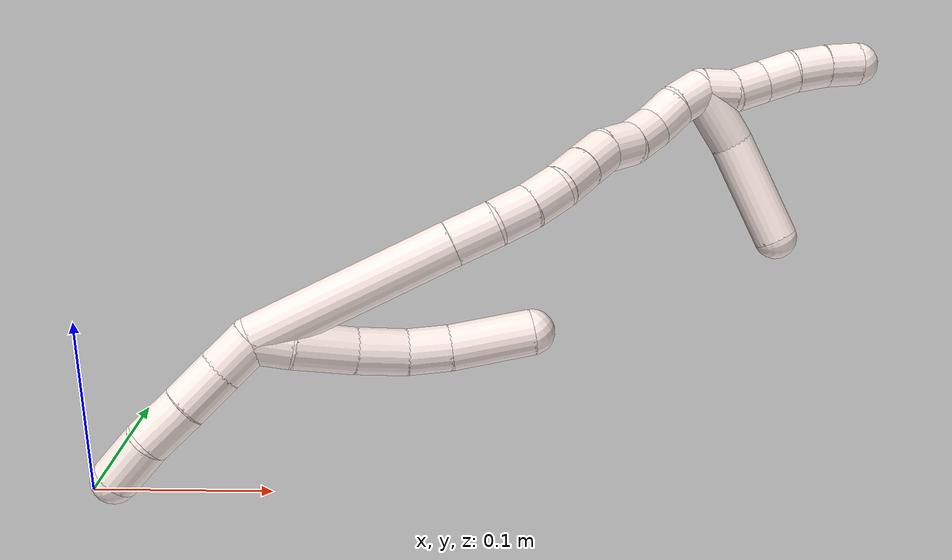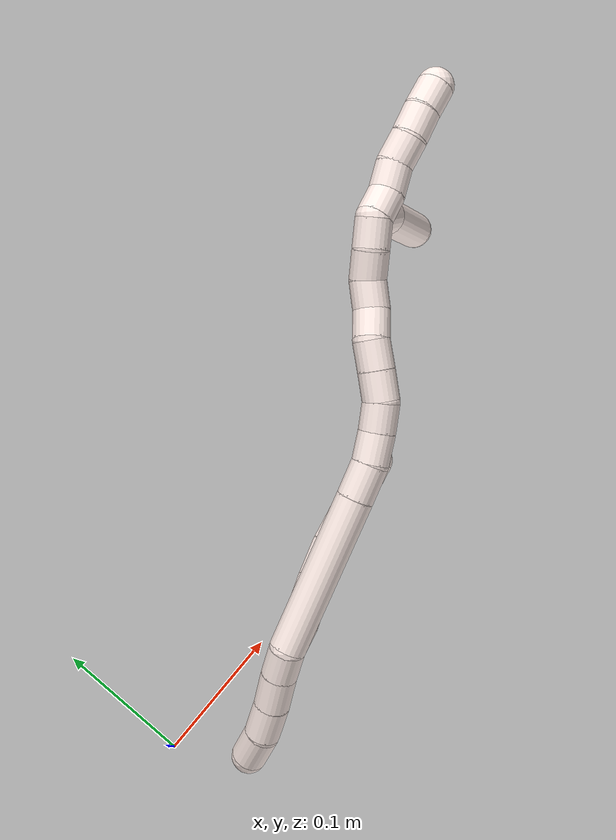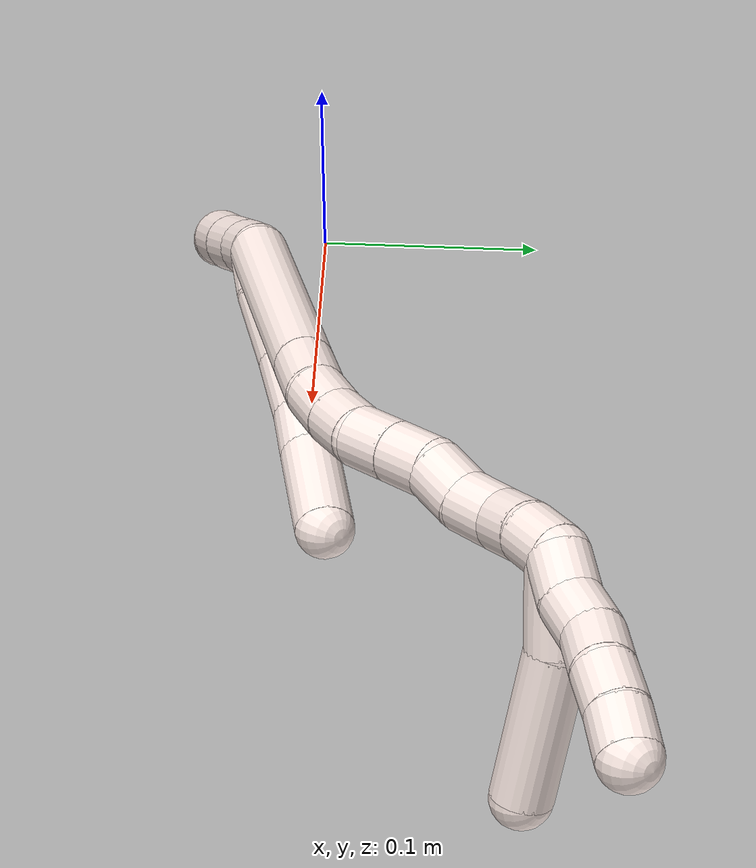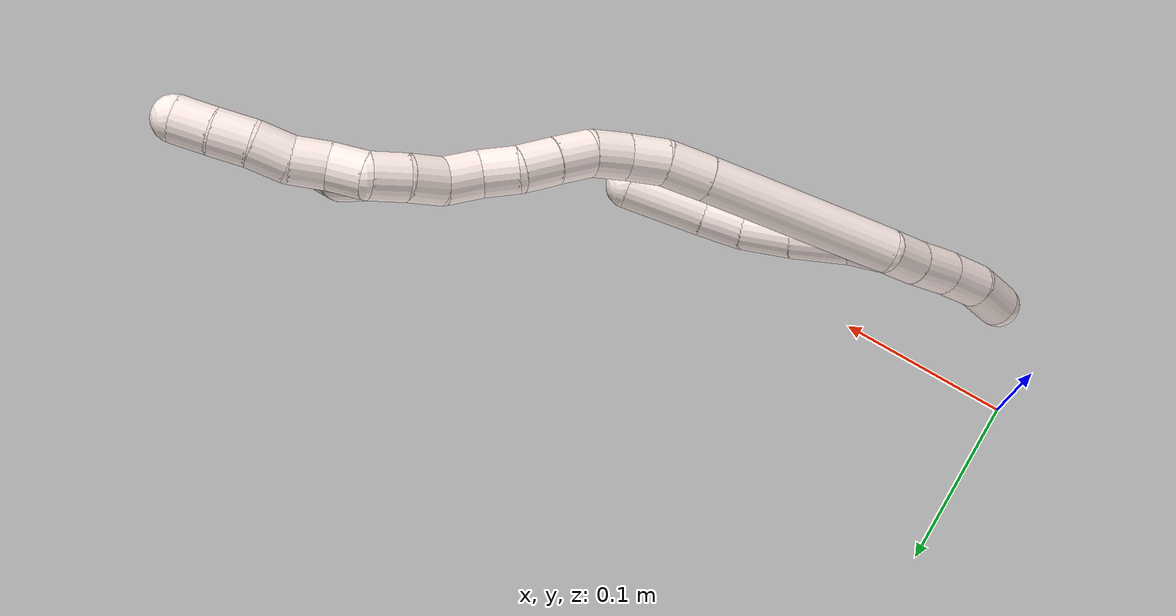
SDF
<sdf version="1.7">
 <world name="default">
  <model name="photoneo_s_sensor">
   <static>1</static>
   <pose>0 0 2 1.57079 1.57079 3.14159</pose>
   <link name="link">
    <inertial><mass>0.1</mass></inertial>
    <sensor name="sensor" type="depth">
     <update_rate>30</update_rate>
     <camera>
      <horizontal_fov>1.22</horizontal_fov>
      <image><width>1920</width><height>1200</height><format>B8G8R8</format></image>
      <clip><near>0.1</near><far>4</far></clip>
      <depth_camera><output>points</output></depth_camera>
     </camera>
     <plugin name="camera_plugin" filename="libgazebo_ros_depth_camera.so">
      <baseline>0.2</baseline>
      <alwaysOn>1</alwaysOn>
      <updateRate>0.0</updateRate>
      <cameraName>camera_ir</cameraName>
      <imageTopicName>/camera/color/image_raw</imageTopicName>
      <cameraInfoTopicName>/camera/color/camera_info</cameraInfoTopicName>
      <depthImageTopicName>/camera/depth/image_raw</depthImageTopicName>
      <depthImageCameraInfoTopicName>/camera/depth/camera_info</depthImageCameraInfoTopicName>
      <pointCloudTopicName>/camera/depth/points</pointCloudTopicName>
      <frameName>fr_optical</frameName>
      <pointCloudCutoff>0.1</pointCloudCutoff>
      <pointCloudCutoffMax>2.0</pointCloudCutoffMax>
      <distortionK1>0</distortionK1>
      <distortionK2>0</distortionK2>
      <distortionK3>0</distortionK3>
      <distortionT1>0</distortionT1>
      <distortionT2>0</distortionT2>
      <CxPrime>0</CxPrime>
      <Cx>0</Cx>
      <Cy>0</Cy>
      <focalLength>0</focalLength>
      <hackBaseline>0</hackBaseline>
     </plugin>
    </sensor>
   </link>
  </model>
  <model name="bin">
   <static>1</static>
   <link name="bottom">
    <collision name="collision-bottom">
     <pose>0 0 -0.01 0 -0 0</pose>
     <geometry><box><size>0.8 0.6 0.02</size></box></geometry>
     <surface>
      <friction><ode><mu>100</mu><mu2>100</mu2></ode></friction>
      <contact><collide_bitmask>65535</collide_bitmask></contact>
     </surface>
    </collision>
   </link>
   <link name="west_wall">
    <collision name="collision-west_wall">
     <pose>-0.41 0 0.1 0 -0 0</pose>
     <geometry><box><size>0.02 0.6 0.2</size></box></geometry>
     <surface>
      <friction><ode><mu>100</mu><mu2>100</mu2></ode></friction>
      <contact><collide_bitmask>65535</collide_bitmask></contact>
     </surface>
    </collision>
   </link>
   <link name="east_wall">
    <collision name="collision-east_wall">
     <pose>0.41 0 0.1 0 -0 0</pose>
     <geometry><box><size>0.02 0.6 0.2</size></box></geometry>
     <surface>
      <friction><ode><mu>100</mu><mu2>100</mu2></ode></friction>
      <contact><collide_bitmask>65535</collide_bitmask></contact>
     </surface>
    </collision>
   </link>
   <link name="south_wall">
    <collision name="collision-south_wall">
     <pose>0 -0.31 0.1 0 -0 0</pose>
     <geometry><box><size>0.8 0.02 0.2</size></box></geometry>
     <surface>
      <friction><ode><mu>100</mu><mu2>100</mu2></ode></friction>
      <contact><collide_bitmask>65535</collide_bitmask></contact>
     </surface>
    </collision>
   </link>
   <link name="north_wall">
    <collision name="collision-north_wall">
     <pose>0 0.31 0.1 0 -0 0</pose>
     <geometry><box><size>0.8 0.02 0.2</size></box></geometry>
     <surface>
      <friction><ode><mu>100</mu><mu2>100</mu2></ode></friction>
      <contact><collide_bitmask>65535</collide_bitmask></contact>
     </surface>
    </collision>
   </link>
  </model>
  <model name="11">
   <static>0</static>
   <link name="11">
    <collision name="collision-cylinder-e_1_2_8">
     <pose>0.003823 0.00632 0.006937 -0.738863 0.386902 -0.151419</pose>
     <geometry><cylinder><radius>0.0125</radius><length>0.020266</length></cylinder></geometry>
     <surface>
      <friction><ode><mu>1.16</mu><mu2>1.16</mu2><slip1>0</slip1><slip2>0</slip2></ode></friction>
      <contact><ode><kp>1e+06</kp><kd>1</kd><max_vel>0</max_vel><min_depth>0.001</min_depth></ode></contact>
     </surface>
    </collision>
    <visual name="visual-cylinder-e_1_2_8">
     <pose>0.003823 0.00632 0.006937 -0.738863 0.386902 -0.151419</pose>
     <geometry><cylinder><radius>0.0125</radius><length>0.020266</length></cylinder></geometry>
     <material><ambient>1 0.933333 0.909804 1</ambient></material>
    </visual>
    <collision name="collision-cylinder-e_2_8_9">
     <pose>0.012073 0.022848 0.026273 -0.688807 0.268934 -0.096976</pose>
     <geometry><cylinder><radius>0.0125</radius><length>0.03332</length></cylinder></geometry>
     <surface>
      <friction><ode><mu>1.16</mu><mu2>1.16</mu2><slip1>0</slip1><slip2>0</slip2></ode></friction>
      <contact><ode><kp>1e+06</kp><kd>1</kd><max_vel>0</max_vel><min_depth>0.001</min_depth></ode></contact>
     </surface>
    </collision>
    <visual name="visual-cylinder-e_2_8_9">
     <pose>0.012073 0.022848 0.026273 -0.688807 0.268934 -0.096976</pose>
     <geometry><cylinder><radius>0.0125</radius><length>0.03332</length></cylinder></geometry>
     <material><ambient>1 0.933333 0.909804 1</ambient></material>
    </visual>
    <collision name="collision-cylinder-e_3_9_10">
     <pose>0.021097 0.040816 0.049429 -0.624928 0.333624 -0.10868</pose>
     <geometry><cylinder><radius>0.0125</radius><length>0.028075</length></cylinder></geometry>
     <surface>
      <friction><ode><mu>1.16</mu><mu2>1.16</mu2><slip1>0</slip1><slip2>0</slip2></ode></friction>
      <contact><ode><kp>1e+06</kp><kd>1</kd><max_vel>0</max_vel><min_depth>0.001</min_depth></ode></contact>
     </surface>
    </collision>
    <visual name="visual-cylinder-e_3_9_10">
     <pose>0.021097 0.040816 0.049429 -0.624928 0.333624 -0.10868</pose>
     <geometry><cylinder><radius>0.0125</radius><length>0.028075</length></cylinder></geometry>
     <material><ambient>1 0.933333 0.909804 1</ambient></material>
    </visual>
    <collision name="collision-cylinder-e_4_10_11">
     <pose>0.031047 0.053143 0.069521 -0.455028 0.475658 -0.112132</pose>
     <geometry><cylinder><radius>0.0125</radius><length>0.02338</length></cylinder></geometry>
     <surface>
      <friction><ode><mu>1.16</mu><mu2>1.16</mu2><slip1>0</slip1><slip2>0</slip2></ode></friction>
      <contact><ode><kp>1e+06</kp><kd>1</kd><max_vel>0</max_vel><min_depth>0.001</min_depth></ode></contact>
     </surface>
    </collision>
    <visual name="visual-cylinder-e_4_10_11">
     <pose>0.031047 0.053143 0.069521 -0.455028 0.475658 -0.112132</pose>
     <geometry><cylinder><radius>0.0125</radius><length>0.02338</length></cylinder></geometry>
     <material><ambient>1 0.933333 0.909804 1</ambient></material>
    </visual>
    <collision name="collision-cylinder-e_5_11_6">
     <pose>0.04697 0.064428 0.097523 -0.3454 0.489529 -0.087084</pose>
     <geometry><cylinder><radius>0.0125</radius><length>0.044959</length></cylinder></geometry>
     <surface>
      <friction><ode><mu>1.16</mu><mu2>1.16</mu2><slip1>0</slip1><slip2>0</slip2></ode></friction>
      <contact><ode><kp>1e+06</kp><kd>1</kd><max_vel>0</max_vel><min_depth>0.001</min_depth></ode></contact>
     </surface>
    </collision>
    <visual name="visual-cylinder-e_5_11_6">
     <pose>0.04697 0.064428 0.097523 -0.3454 0.489529 -0.087084</pose>
     <geometry><cylinder><radius>0.0125</radius><length>0.044959</length></cylinder></geometry>
     <material><ambient>1 0.933333 0.909804 1</ambient></material>
    </visual>
    <collision name="collision-cylinder-e_1_2_12">
     <pose>-0.003697 0.002993 -0.00991 -2.84831 -0.343023 1.72947</pose>
     <geometry><cylinder><radius>0.0125</radius><length>0.021984</length></cylinder></geometry>
     <surface>
      <friction><ode><mu>1.16</mu><mu2>1.16</mu2><slip1>0</slip1><slip2>0</slip2></ode></friction>
      <contact><ode><kp>1e+06</kp><kd>1</kd><max_vel>0</max_vel><min_depth>0.001</min_depth></ode></contact>
     </surface>
    </collision>
    <visual name="visual-cylinder-e_1_2_12">
     <pose>-0.003697 0.002993 -0.00991 -2.84831 -0.343023 1.72947</pose>
     <geometry><cylinder><radius>0.0125</radius><length>0.021984</length></cylinder></geometry>
     <material><ambient>1 0.933333 0.909804 1</ambient></material>
    </visual>
    <collision name="collision-cylinder-e_2_12_13">
     <pose>-0.011063 0.009365 -0.031578 -2.86171 -0.291333 1.61144</pose>
     <geometry><cylinder><radius>0.0125</radius><length>0.025547</length></cylinder></geometry>
     <surface>
      <friction><ode><mu>1.16</mu><mu2>1.16</mu2><slip1>0</slip1><slip2>0</slip2></ode></friction>
      <contact><ode><kp>1e+06</kp><kd>1</kd><max_vel>0</max_vel><min_depth>0.001</min_depth></ode></contact>
     </surface>
    </collision>
    <visual name="visual-cylinder-e_2_12_13">
     <pose>-0.011063 0.009365 -0.031578 -2.86171 -0.291333 1.61144</pose>
     <geometry><cylinder><radius>0.0125</radius><length>0.025547</length></cylinder></geometry>
     <material><ambient>1 0.933333 0.909804 1</ambient></material>
    </visual>
    <collision name="collision-cylinder-e_3_13_14">
     <pose>-0.019266 0.016169 -0.055002 -2.85607 -0.357015 1.79618</pose>
     <geometry><cylinder><radius>0.0125</radius><length>0.02595</length></cylinder></geometry>
     <surface>
      <friction><ode><mu>1.16</mu><mu2>1.16</mu2><slip1>0</slip1><slip2>0</slip2></ode></friction>
      <contact><ode><kp>1e+06</kp><kd>1</kd><max_vel>0</max_vel><min_depth>0.001</min_depth></ode></contact>
     </surface>
    </collision>
    <visual name="visual-cylinder-e_3_13_14">
     <pose>-0.019266 0.016169 -0.055002 -2.85607 -0.357015 1.79618</pose>
     <geometry><cylinder><radius>0.0125</radius><length>0.02595</length></cylinder></geometry>
     <material><ambient>1 0.933333 0.909804 1</ambient></material>
    </visual>
    <collision name="collision-cylinder-e_4_14_5">
     <pose>-0.029991 0.024926 -0.07711 -2.66948 -0.485682 1.60025</pose>
     <geometry><cylinder><radius>0.0125</radius><length>0.026519</length></cylinder></geometry>
     <surface>
      <friction><ode><mu>1.16</mu><mu2>1.16</mu2><slip1>0</slip1><slip2>0</slip2></ode></friction>
      <contact><ode><kp>1e+06</kp><kd>1</kd><max_vel>0</max_vel><min_depth>0.001</min_depth></ode></contact>
     </surface>
    </collision>
    <visual name="visual-cylinder-e_4_14_5">
     <pose>-0.029991 0.024926 -0.07711 -2.66948 -0.485682 1.60025</pose>
     <geometry><cylinder><radius>0.0125</radius><length>0.026519</length></cylinder></geometry>
     <material><ambient>1 0.933333 0.909804 1</ambient></material>
    </visual>
    <collision name="collision-cylinder-e_1_2_15">
     <pose>0.024661 0.002296 0.050709 -0.045249 0.452242 -0.010411</pose>
     <geometry><cylinder><radius>0.0125</radius><length>0.112868</length></cylinder></geometry>
     <surface>
      <friction><ode><mu>1.16</mu><mu2>1.16</mu2><slip1>0</slip1><slip2>0</slip2></ode></friction>
      <contact><ode><kp>1e+06</kp><kd>1</kd><max_vel>0</max_vel><min_depth>0.001</min_depth></ode></contact>
     </surface>
    </collision>
    <visual name="visual-cylinder-e_1_2_15">
     <pose>0.024661 0.002296 0.050709 -0.045249 0.452242 -0.010411</pose>
     <geometry><cylinder><radius>0.0125</radius><length>0.112868</length></cylinder></geometry>
     <material><ambient>1 0.933333 0.909804 1</ambient></material>
    </visual>
    <collision name="collision-cylinder-e_2_15_16">
     <pose>0.05462 0.00537 0.112669 -0.069029 0.43916 -0.015412</pose>
     <geometry><cylinder><radius>0.0125</radius><length>0.024922</length></cylinder></geometry>
     <surface>
      <friction><ode><mu>1.16</mu><mu2>1.16</mu2><slip1>0</slip1><slip2>0</slip2></ode></friction>
      <contact><ode><kp>1e+06</kp><kd>1</kd><max_vel>0</max_vel><min_depth>0.001</min_depth></ode></contact>
     </surface>
    </collision>
    <visual name="visual-cylinder-e_2_15_16">
     <pose>0.05462 0.00537 0.112669 -0.069029 0.43916 -0.015412</pose>
     <geometry><cylinder><radius>0.0125</radius><length>0.024922</length></cylinder></geometry>
     <material><ambient>1 0.933333 0.909804 1</ambient></material>
    </visual>
    <collision name="collision-cylinder-e_3_16_17">
     <pose>0.062458 0.007301 0.134149 -0.112223 0.242009 -0.01366</pose>
     <geometry><cylinder><radius>0.0125</radius><length>0.021203</length></cylinder></geometry>
     <surface>
      <friction><ode><mu>1.16</mu><mu2>1.16</mu2><slip1>0</slip1><slip2>0</slip2></ode></friction>
      <contact><ode><kp>1e+06</kp><kd>1</kd><max_vel>0</max_vel><min_depth>0.001</min_depth></ode></contact>
     </surface>
    </collision>
    <visual name="visual-cylinder-e_3_16_17">
     <pose>0.062458 0.007301 0.134149 -0.112223 0.242009 -0.01366</pose>
     <geometry><cylinder><radius>0.0125</radius><length>0.021203</length></cylinder></geometry>
     <material><ambient>1 0.933333 0.909804 1</ambient></material>
    </visual>
    <collision name="collision-cylinder-e_4_17_18">
     <pose>0.066768 0.008574 0.154336 -0.012099 0.175803 -0.001066</pose>
     <geometry><cylinder><radius>0.0125</radius><length>0.020231</length></cylinder></geometry>
     <surface>
      <friction><ode><mu>1.16</mu><mu2>1.16</mu2><slip1>0</slip1><slip2>0</slip2></ode></friction>
      <contact><ode><kp>1e+06</kp><kd>1</kd><max_vel>0</max_vel><min_depth>0.001</min_depth></ode></contact>
     </surface>
    </collision>
    <visual name="visual-cylinder-e_4_17_18">
     <pose>0.066768 0.008574 0.154336 -0.012099 0.175803 -0.001066</pose>
     <geometry><cylinder><radius>0.0125</radius><length>0.020231</length></cylinder></geometry>
     <material><ambient>1 0.933333 0.909804 1</ambient></material>
    </visual>
    <collision name="collision-cylinder-e_5_18_19">
     <pose>0.067338 0.009105 0.174427 -0.040543 -0.11775 0.00239</pose>
     <geometry><cylinder><radius>0.0125</radius><length>0.020422</length></cylinder></geometry>
     <surface>
      <friction><ode><mu>1.16</mu><mu2>1.16</mu2><slip1>0</slip1><slip2>0</slip2></ode></friction>
      <contact><ode><kp>1e+06</kp><kd>1</kd><max_vel>0</max_vel><min_depth>0.001</min_depth></ode></contact>
     </surface>
    </collision>
    <visual name="visual-cylinder-e_5_18_19">
     <pose>0.067338 0.009105 0.174427 -0.040543 -0.11775 0.00239</pose>
     <geometry><cylinder><radius>0.0125</radius><length>0.020422</length></cylinder></geometry>
     <material><ambient>1 0.933333 0.909804 1</ambient></material>
    </visual>
    <collision name="collision-cylinder-e_6_19_20">
     <pose>0.064774 0.010117 0.194554 -0.060022 -0.135461 0.004073</pose>
     <geometry><cylinder><radius>0.0125</radius><length>0.020211</length></cylinder></geometry>
     <surface>
      <friction><ode><mu>1.16</mu><mu2>1.16</mu2><slip1>0</slip1><slip2>0</slip2></ode></friction>
      <contact><ode><kp>1e+06</kp><kd>1</kd><max_vel>0</max_vel><min_depth>0.001</min_depth></ode></contact>
     </surface>
    </collision>
    <visual name="visual-cylinder-e_6_19_20">
     <pose>0.064774 0.010117 0.194554 -0.060022 -0.135461 0.004073</pose>
     <geometry><cylinder><radius>0.0125</radius><length>0.020211</length></cylinder></geometry>
     <material><ambient>1 0.933333 0.909804 1</ambient></material>
    </visual>
    <collision name="collision-cylinder-e_7_20_21">
     <pose>0.063635 0.014053 0.214044 -0.337824 0.022451 -0.003829</pose>
     <geometry><cylinder><radius>0.0125</radius><length>0.020135</length></cylinder></geometry>
     <surface>
      <friction><ode><mu>1.16</mu><mu2>1.16</mu2><slip1>0</slip1><slip2>0</slip2></ode></friction>
      <contact><ode><kp>1e+06</kp><kd>1</kd><max_vel>0</max_vel><min_depth>0.001</min_depth></ode></contact>
     </surface>
    </collision>
    <visual name="visual-cylinder-e_7_20_21">
     <pose>0.063635 0.014053 0.214044 -0.337824 0.022451 -0.003829</pose>
     <geometry><cylinder><radius>0.0125</radius><length>0.020135</length></cylinder></geometry>
     <material><ambient>1 0.933333 0.909804 1</ambient></material>
    </visual>
    <collision name="collision-cylinder-e_8_21_22">
     <pose>0.062902 0.018242 0.233461 -0.08578 -0.096013 0.004124</pose>
     <geometry><cylinder><radius>0.0125</radius><length>0.020007</length></cylinder></geometry>
     <surface>
      <friction><ode><mu>1.16</mu><mu2>1.16</mu2><slip1>0</slip1><slip2>0</slip2></ode></friction>
      <contact><ode><kp>1e+06</kp><kd>1</kd><max_vel>0</max_vel><min_depth>0.001</min_depth></ode></contact>
     </surface>
    </collision>
    <visual name="visual-cylinder-e_8_21_22">
     <pose>0.062902 0.018242 0.233461 -0.08578 -0.096013 0.004124</pose>
     <geometry><cylinder><radius>0.0125</radius><length>0.020007</length></cylinder></geometry>
     <material><ambient>1 0.933333 0.909804 1</ambient></material>
    </visual>
    <collision name="collision-cylinder-e_9_22_23">
     <pose>0.063461 0.017631 0.253157 0.14871 0.15241 0.011375</pose>
     <geometry><cylinder><radius>0.0125</radius><length>0.020001</length></cylinder></geometry>
     <surface>
      <friction><ode><mu>1.16</mu><mu2>1.16</mu2><slip1>0</slip1><slip2>0</slip2></ode></friction>
      <contact><ode><kp>1e+06</kp><kd>1</kd><max_vel>0</max_vel><min_depth>0.001</min_depth></ode></contact>
     </surface>
    </collision>
    <visual name="visual-cylinder-e_9_22_23">
     <pose>0.063461 0.017631 0.253157 0.14871 0.15241 0.011375</pose>
     <geometry><cylinder><radius>0.0125</radius><length>0.020001</length></cylinder></geometry>
     <material><ambient>1 0.933333 0.909804 1</ambient></material>
    </visual>
    <collision name="collision-cylinder-e_10_23_1">
     <pose>0.066329 0.016594 0.272832 -0.043142 0.135298 -0.002923</pose>
     <geometry><cylinder><radius>0.0125</radius><length>0.02</length></cylinder></geometry>
     <surface>
      <friction><ode><mu>1.16</mu><mu2>1.16</mu2><slip1>0</slip1><slip2>0</slip2></ode></friction>
      <contact><ode><kp>1e+06</kp><kd>1</kd><max_vel>0</max_vel><min_depth>0.001</min_depth></ode></contact>
     </surface>
    </collision>
    <visual name="visual-cylinder-e_10_23_1">
     <pose>0.066329 0.016594 0.272832 -0.043142 0.135298 -0.002923</pose>
     <geometry><cylinder><radius>0.0125</radius><length>0.02</length></cylinder></geometry>
     <material><ambient>1 0.933333 0.909804 1</ambient></material>
    </visual>
    <collision name="collision-cylinder-e_1_1_24">
     <pose>0.071579 0.021994 0.29048 -0.570608 0.40085 -0.119031</pose>
     <geometry><cylinder><radius>0.0125</radius><length>0.02</length></cylinder></geometry>
     <surface>
      <friction><ode><mu>1.16</mu><mu2>1.16</mu2><slip1>0</slip1><slip2>0</slip2></ode></friction>
      <contact><ode><kp>1e+06</kp><kd>1</kd><max_vel>0</max_vel><min_depth>0.001</min_depth></ode></contact>
     </surface>
    </collision>
    <visual name="visual-cylinder-e_1_1_24">
     <pose>0.071579 0.021994 0.29048 -0.570608 0.40085 -0.119031</pose>
     <geometry><cylinder><radius>0.0125</radius><length>0.02</length></cylinder></geometry>
     <material><ambient>1 0.933333 0.909804 1</ambient></material>
    </visual>
    <collision name="collision-cylinder-e_2_24_25">
     <pose>0.07826 0.029211 0.307569 -0.235724 0.281549 -0.033557</pose>
     <geometry><cylinder><radius>0.0125</radius><length>0.02</length></cylinder></geometry>
     <surface>
      <friction><ode><mu>1.16</mu><mu2>1.16</mu2><slip1>0</slip1><slip2>0</slip2></ode></friction>
      <contact><ode><kp>1e+06</kp><kd>1</kd><max_vel>0</max_vel><min_depth>0.001</min_depth></ode></contact>
     </surface>
    </collision>
    <visual name="visual-cylinder-e_2_24_25">
     <pose>0.07826 0.029211 0.307569 -0.235724 0.281549 -0.033557</pose>
     <geometry><cylinder><radius>0.0125</radius><length>0.02</length></cylinder></geometry>
     <material><ambient>1 0.933333 0.909804 1</ambient></material>
    </visual>
    <collision name="collision-cylinder-e_3_25_26">
     <pose>0.086037 0.032956 0.32544 -0.174222 0.523478 -0.046781</pose>
     <geometry><cylinder><radius>0.0125</radius><length>0.02</length></cylinder></geometry>
     <surface>
      <friction><ode><mu>1.16</mu><mu2>1.16</mu2><slip1>0</slip1><slip2>0</slip2></ode></friction>
      <contact><ode><kp>1e+06</kp><kd>1</kd><max_vel>0</max_vel><min_depth>0.001</min_depth></ode></contact>
     </surface>
    </collision>
    <visual name="visual-cylinder-e_3_25_26">
     <pose>0.086037 0.032956 0.32544 -0.174222 0.523478 -0.046781</pose>
     <geometry><cylinder><radius>0.0125</radius><length>0.02</length></cylinder></geometry>
     <material><ambient>1 0.933333 0.909804 1</ambient></material>
    </visual>
    <collision name="collision-cylinder-e_4_26_27">
     <pose>0.095288 0.03753 0.342483 -0.346413 0.439157 -0.078054</pose>
     <geometry><cylinder><radius>0.0125</radius><length>0.02</length></cylinder></geometry>
     <surface>
      <friction><ode><mu>1.16</mu><mu2>1.16</mu2><slip1>0</slip1><slip2>0</slip2></ode></friction>
      <contact><ode><kp>1e+06</kp><kd>1</kd><max_vel>0</max_vel><min_depth>0.001</min_depth></ode></contact>
     </surface>
    </collision>
    <visual name="visual-cylinder-e_4_26_27">
     <pose>0.095288 0.03753 0.342483 -0.346413 0.439157 -0.078054</pose>
     <geometry><cylinder><radius>0.0125</radius><length>0.02</length></cylinder></geometry>
     <material><ambient>1 0.933333 0.909804 1</ambient></material>
    </visual>
    <collision name="collision-cylinder-e_5_27_4">
     <pose>0.104066 0.044538 0.358998 -0.457024 0.469745 -0.11119</pose>
     <geometry><cylinder><radius>0.0125</radius><length>0.02</length></cylinder></geometry>
     <surface>
      <friction><ode><mu>1.16</mu><mu2>1.16</mu2><slip1>0</slip1><slip2>0</slip2></ode></friction>
      <contact><ode><kp>1e+06</kp><kd>1</kd><max_vel>0</max_vel><min_depth>0.001</min_depth></ode></contact>
     </surface>
    </collision>
    <visual name="visual-cylinder-e_5_27_4">
     <pose>0.104066 0.044538 0.358998 -0.457024 0.469745 -0.11119</pose>
     <geometry><cylinder><radius>0.0125</radius><length>0.02</length></cylinder></geometry>
     <material><ambient>1 0.933333 0.909804 1</ambient></material>
    </visual>
    <collision name="collision-cylinder-e_1_1_28">
     <pose>0.07044 0.035326 0.283915 -1.50625 0.149492 -0.140173</pose>
     <geometry><cylinder><radius>0.0125</radius><length>0.037101</length></cylinder></geometry>
     <surface>
      <friction><ode><mu>1.16</mu><mu2>1.16</mu2><slip1>0</slip1><slip2>0</slip2></ode></friction>
      <contact><ode><kp>1e+06</kp><kd>1</kd><max_vel>0</max_vel><min_depth>0.001</min_depth></ode></contact>
     </surface>
    </collision>
    <visual name="visual-cylinder-e_1_1_28">
     <pose>0.07044 0.035326 0.283915 -1.50625 0.149492 -0.140173</pose>
     <geometry><cylinder><radius>0.0125</radius><length>0.037101</length></cylinder></geometry>
     <material><ambient>1 0.933333 0.909804 1</ambient></material>
    </visual>
    <collision name="collision-cylinder-e_2_28_3">
     <pose>0.080699 0.083864 0.280751 -1.7136 0.240679 -0.277316</pose>
     <geometry><cylinder><radius>0.0125</radius><length>0.062899</length></cylinder></geometry>
     <surface>
      <friction><ode><mu>1.16</mu><mu2>1.16</mu2><slip1>0</slip1><slip2>0</slip2></ode></friction>
      <contact><ode><kp>1e+06</kp><kd>1</kd><max_vel>0</max_vel><min_depth>0.001</min_depth></ode></contact>
     </surface>
    </collision>
    <visual name="visual-cylinder-e_2_28_3">
     <pose>0.080699 0.083864 0.280751 -1.7136 0.240679 -0.277316</pose>
     <geometry><cylinder><radius>0.0125</radius><length>0.062899</length></cylinder></geometry>
     <material><ambient>1 0.933333 0.909804 1</ambient></material>
    </visual>
    <collision name="collision-sphere-3">
     <pose>0.088196 0.114096 0.276404 0 -0 0</pose>
     <geometry><sphere><radius>0.0125</radius></sphere></geometry>
     <surface>
      <friction><ode><mu>1.16</mu><mu2>1.16</mu2><slip1>0</slip1><slip2>0</slip2></ode></friction>
      <contact><ode><kp>1e+06</kp><kd>1</kd><max_vel>0</max_vel><min_depth>0.001</min_depth></ode></contact>
     </surface>
    </collision>
    <visual name="visual-sphere-3">
     <pose>0.088196 0.114096 0.276404 0 -0 0</pose>
     <geometry><sphere><radius>0.0125</radius></sphere></geometry>
     <material><ambient>1 0.933333 0.909804 1</ambient></material>
    </visual>
    <collision name="collision-sphere-28">
     <pose>0.073203 0.053632 0.285098 0 -0 0</pose>
     <geometry><sphere><radius>0.0125</radius></sphere></geometry>
     <surface>
      <friction><ode><mu>1.16</mu><mu2>1.16</mu2><slip1>0</slip1><slip2>0</slip2></ode></friction>
      <contact><ode><kp>1e+06</kp><kd>1</kd><max_vel>0</max_vel><min_depth>0.001</min_depth></ode></contact>
     </surface>
    </collision>
    <visual name="visual-sphere-28">
     <pose>0.073203 0.053632 0.285098 0 -0 0</pose>
     <geometry><sphere><radius>0.0125</radius></sphere></geometry>
     <material><ambient>1 0.933333 0.909804 1</ambient></material>
    </visual>
    <collision name="collision-sphere-4">
     <pose>0.108593 0.048473 0.367 0 -0 0</pose>
     <geometry><sphere><radius>0.0125</radius></sphere></geometry>
     <surface>
      <friction><ode><mu>1.16</mu><mu2>1.16</mu2><slip1>0</slip1><slip2>0</slip2></ode></friction>
      <contact><ode><kp>1e+06</kp><kd>1</kd><max_vel>0</max_vel><min_depth>0.001</min_depth></ode></contact>
     </surface>
    </collision>
    <visual name="visual-sphere-4">
     <pose>0.108593 0.048473 0.367 0 -0 0</pose>
     <geometry><sphere><radius>0.0125</radius></sphere></geometry>
     <material><ambient>1 0.933333 0.909804 1</ambient></material>
    </visual>
    <collision name="collision-sphere-27">
     <pose>0.09954 0.040603 0.350996 0 -0 0</pose>
     <geometry><sphere><radius>0.0125</radius></sphere></geometry>
     <surface>
      <friction><ode><mu>1.16</mu><mu2>1.16</mu2><slip1>0</slip1><slip2>0</slip2></ode></friction>
      <contact><ode><kp>1e+06</kp><kd>1</kd><max_vel>0</max_vel><min_depth>0.001</min_depth></ode></contact>
     </surface>
    </collision>
    <visual name="visual-sphere-27">
     <pose>0.09954 0.040603 0.350996 0 -0 0</pose>
     <geometry><sphere><radius>0.0125</radius></sphere></geometry>
     <material><ambient>1 0.933333 0.909804 1</ambient></material>
    </visual>
    <collision name="collision-sphere-26">
     <pose>0.091036 0.034457 0.333969 0 -0 0</pose>
     <geometry><sphere><radius>0.0125</radius></sphere></geometry>
     <surface>
      <friction><ode><mu>1.16</mu><mu2>1.16</mu2><slip1>0</slip1><slip2>0</slip2></ode></friction>
      <contact><ode><kp>1e+06</kp><kd>1</kd><max_vel>0</max_vel><min_depth>0.001</min_depth></ode></contact>
     </surface>
    </collision>
    <visual name="visual-sphere-26">
     <pose>0.091036 0.034457 0.333969 0 -0 0</pose>
     <geometry><sphere><radius>0.0125</radius></sphere></geometry>
     <material><ambient>1 0.933333 0.909804 1</ambient></material>
    </visual>
    <collision name="collision-sphere-25">
     <pose>0.081038 0.031455 0.31691 0 -0 0</pose>
     <geometry><sphere><radius>0.0125</radius></sphere></geometry>
     <surface>
      <friction><ode><mu>1.16</mu><mu2>1.16</mu2><slip1>0</slip1><slip2>0</slip2></ode></friction>
      <contact><ode><kp>1e+06</kp><kd>1</kd><max_vel>0</max_vel><min_depth>0.001</min_depth></ode></contact>
     </surface>
    </collision>
    <visual name="visual-sphere-25">
     <pose>0.081038 0.031455 0.31691 0 -0 0</pose>
     <geometry><sphere><radius>0.0125</radius></sphere></geometry>
     <material><ambient>1 0.933333 0.909804 1</ambient></material>
    </visual>
    <collision name="collision-sphere-24">
     <pose>0.075481 0.026968 0.298229 0 -0 0</pose>
     <geometry><sphere><radius>0.0125</radius></sphere></geometry>
     <surface>
      <friction><ode><mu>1.16</mu><mu2>1.16</mu2><slip1>0</slip1><slip2>0</slip2></ode></friction>
      <contact><ode><kp>1e+06</kp><kd>1</kd><max_vel>0</max_vel><min_depth>0.001</min_depth></ode></contact>
     </surface>
    </collision>
    <visual name="visual-sphere-24">
     <pose>0.075481 0.026968 0.298229 0 -0 0</pose>
     <geometry><sphere><radius>0.0125</radius></sphere></geometry>
     <material><ambient>1 0.933333 0.909804 1</ambient></material>
    </visual>
    <collision name="collision-sphere-1">
     <pose>0.067677 0.017021 0.282731 0 -0 0</pose>
     <geometry><sphere><radius>0.0125</radius></sphere></geometry>
     <surface>
      <friction><ode><mu>1.16</mu><mu2>1.16</mu2><slip1>0</slip1><slip2>0</slip2></ode></friction>
      <contact><ode><kp>1e+06</kp><kd>1</kd><max_vel>0</max_vel><min_depth>0.001</min_depth></ode></contact>
     </surface>
    </collision>
    <visual name="visual-sphere-1">
     <pose>0.067677 0.017021 0.282731 0 -0 0</pose>
     <geometry><sphere><radius>0.0125</radius></sphere></geometry>
     <material><ambient>1 0.933333 0.909804 1</ambient></material>
    </visual>
    <collision name="collision-sphere-23">
     <pose>0.06498 0.016166 0.262932 0 -0 0</pose>
     <geometry><sphere><radius>0.0125</radius></sphere></geometry>
     <surface>
      <friction><ode><mu>1.16</mu><mu2>1.16</mu2><slip1>0</slip1><slip2>0</slip2></ode></friction>
      <contact><ode><kp>1e+06</kp><kd>1</kd><max_vel>0</max_vel><min_depth>0.001</min_depth></ode></contact>
     </surface>
    </collision>
    <visual name="visual-sphere-23">
     <pose>0.06498 0.016166 0.262932 0 -0 0</pose>
     <geometry><sphere><radius>0.0125</radius></sphere></geometry>
     <material><ambient>1 0.933333 0.909804 1</ambient></material>
    </visual>
    <collision name="collision-sphere-22">
     <pose>0.061943 0.019095 0.243381 0 -0 0</pose>
     <geometry><sphere><radius>0.0125</radius></sphere></geometry>
     <surface>
      <friction><ode><mu>1.16</mu><mu2>1.16</mu2><slip1>0</slip1><slip2>0</slip2></ode></friction>
      <contact><ode><kp>1e+06</kp><kd>1</kd><max_vel>0</max_vel><min_depth>0.001</min_depth></ode></contact>
     </surface>
    </collision>
    <visual name="visual-sphere-22">
     <pose>0.061943 0.019095 0.243381 0 -0 0</pose>
     <geometry><sphere><radius>0.0125</radius></sphere></geometry>
     <material><ambient>1 0.933333 0.909804 1</ambient></material>
    </visual>
    <collision name="collision-sphere-21">
     <pose>0.063861 0.017389 0.22354 0 -0 0</pose>
     <geometry><sphere><radius>0.0125</radius></sphere></geometry>
     <surface>
      <friction><ode><mu>1.16</mu><mu2>1.16</mu2><slip1>0</slip1><slip2>0</slip2></ode></friction>
      <contact><ode><kp>1e+06</kp><kd>1</kd><max_vel>0</max_vel><min_depth>0.001</min_depth></ode></contact>
     </surface>
    </collision>
    <visual name="visual-sphere-21">
     <pose>0.063861 0.017389 0.22354 0 -0 0</pose>
     <geometry><sphere><radius>0.0125</radius></sphere></geometry>
     <material><ambient>1 0.933333 0.909804 1</ambient></material>
    </visual>
    <collision name="collision-sphere-6">
     <pose>0.05754 0.071145 0.116191 0 -0 0</pose>
     <geometry><sphere><radius>0.0125</radius></sphere></geometry>
     <surface>
      <friction><ode><mu>1.16</mu><mu2>1.16</mu2><slip1>0</slip1><slip2>0</slip2></ode></friction>
      <contact><ode><kp>1e+06</kp><kd>1</kd><max_vel>0</max_vel><min_depth>0.001</min_depth></ode></contact>
     </surface>
    </collision>
    <visual name="visual-sphere-6">
     <pose>0.05754 0.071145 0.116191 0 -0 0</pose>
     <geometry><sphere><radius>0.0125</radius></sphere></geometry>
     <material><ambient>1 0.933333 0.909804 1</ambient></material>
    </visual>
    <collision name="collision-sphere-11">
     <pose>0.0364 0.057711 0.078856 0 -0 0</pose>
     <geometry><sphere><radius>0.0125</radius></sphere></geometry>
     <surface>
      <friction><ode><mu>1.16</mu><mu2>1.16</mu2><slip1>0</slip1><slip2>0</slip2></ode></friction>
      <contact><ode><kp>1e+06</kp><kd>1</kd><max_vel>0</max_vel><min_depth>0.001</min_depth></ode></contact>
     </surface>
    </collision>
    <visual name="visual-sphere-11">
     <pose>0.0364 0.057711 0.078856 0 -0 0</pose>
     <geometry><sphere><radius>0.0125</radius></sphere></geometry>
     <material><ambient>1 0.933333 0.909804 1</ambient></material>
    </visual>
    <collision name="collision-sphere-10">
     <pose>0.025694 0.048576 0.060186 0 -0 0</pose>
     <geometry><sphere><radius>0.0125</radius></sphere></geometry>
     <surface>
      <friction><ode><mu>1.16</mu><mu2>1.16</mu2><slip1>0</slip1><slip2>0</slip2></ode></friction>
      <contact><ode><kp>1e+06</kp><kd>1</kd><max_vel>0</max_vel><min_depth>0.001</min_depth></ode></contact>
     </surface>
    </collision>
    <visual name="visual-sphere-10">
     <pose>0.025694 0.048576 0.060186 0 -0 0</pose>
     <geometry><sphere><radius>0.0125</radius></sphere></geometry>
     <material><ambient>1 0.933333 0.909804 1</ambient></material>
    </visual>
    <collision name="collision-sphere-9">
     <pose>0.0165 0.033056 0.038672 0 -0 0</pose>
     <geometry><sphere><radius>0.0125</radius></sphere></geometry>
     <surface>
      <friction><ode><mu>1.16</mu><mu2>1.16</mu2><slip1>0</slip1><slip2>0</slip2></ode></friction>
      <contact><ode><kp>1e+06</kp><kd>1</kd><max_vel>0</max_vel><min_depth>0.001</min_depth></ode></contact>
     </surface>
    </collision>
    <visual name="visual-sphere-9">
     <pose>0.0165 0.033056 0.038672 0 -0 0</pose>
     <geometry><sphere><radius>0.0125</radius></sphere></geometry>
     <material><ambient>1 0.933333 0.909804 1</ambient></material>
    </visual>
    <collision name="collision-sphere-2">
     <geometry><sphere><radius>0.0125</radius></sphere></geometry>
     <surface>
      <friction><ode><mu>1.16</mu><mu2>1.16</mu2><slip1>0</slip1><slip2>0</slip2></ode></friction>
      <contact><ode><kp>1e+06</kp><kd>1</kd><max_vel>0</max_vel><min_depth>0.001</min_depth></ode></contact>
     </surface>
    </collision>
    <visual name="visual-sphere-2">
     <geometry><sphere><radius>0.0125</radius></sphere></geometry>
     <material><ambient>1 0.933333 0.909804 1</ambient></material>
    </visual>
    <collision name="collision-sphere-19">
     <pose>0.066138 0.009516 0.184559 0 -0 0</pose>
     <geometry><sphere><radius>0.0125</radius></sphere></geometry>
     <surface>
      <friction><ode><mu>1.16</mu><mu2>1.16</mu2><slip1>0</slip1><slip2>0</slip2></ode></friction>
      <contact><ode><kp>1e+06</kp><kd>1</kd><max_vel>0</max_vel><min_depth>0.001</min_depth></ode></contact>
     </surface>
    </collision>
    <visual name="visual-sphere-19">
     <pose>0.066138 0.009516 0.184559 0 -0 0</pose>
     <geometry><sphere><radius>0.0125</radius></sphere></geometry>
     <material><ambient>1 0.933333 0.909804 1</ambient></material>
    </visual>
    <collision name="collision-sphere-8">
     <pose>0.007647 0.012639 0.013874 0 -0 0</pose>
     <geometry><sphere><radius>0.0125</radius></sphere></geometry>
     <surface>
      <friction><ode><mu>1.16</mu><mu2>1.16</mu2><slip1>0</slip1><slip2>0</slip2></ode></friction>
      <contact><ode><kp>1e+06</kp><kd>1</kd><max_vel>0</max_vel><min_depth>0.001</min_depth></ode></contact>
     </surface>
    </collision>
    <visual name="visual-sphere-8">
     <pose>0.007647 0.012639 0.013874 0 -0 0</pose>
     <geometry><sphere><radius>0.0125</radius></sphere></geometry>
     <material><ambient>1 0.933333 0.909804 1</ambient></material>
    </visual>
    <collision name="collision-sphere-12">
     <pose>-0.007394 0.005985 -0.019819 0 -0 0</pose>
     <geometry><sphere><radius>0.0125</radius></sphere></geometry>
     <surface>
      <friction><ode><mu>1.16</mu><mu2>1.16</mu2><slip1>0</slip1><slip2>0</slip2></ode></friction>
      <contact><ode><kp>1e+06</kp><kd>1</kd><max_vel>0</max_vel><min_depth>0.001</min_depth></ode></contact>
     </surface>
    </collision>
    <visual name="visual-sphere-12">
     <pose>-0.007394 0.005985 -0.019819 0 -0 0</pose>
     <geometry><sphere><radius>0.0125</radius></sphere></geometry>
     <material><ambient>1 0.933333 0.909804 1</ambient></material>
    </visual>
    <collision name="collision-sphere-13">
     <pose>-0.014732 0.012745 -0.043337 0 -0 0</pose>
     <geometry><sphere><radius>0.0125</radius></sphere></geometry>
     <surface>
      <friction><ode><mu>1.16</mu><mu2>1.16</mu2><slip1>0</slip1><slip2>0</slip2></ode></friction>
      <contact><ode><kp>1e+06</kp><kd>1</kd><max_vel>0</max_vel><min_depth>0.001</min_depth></ode></contact>
     </surface>
    </collision>
    <visual name="visual-sphere-13">
     <pose>-0.014732 0.012745 -0.043337 0 -0 0</pose>
     <geometry><sphere><radius>0.0125</radius></sphere></geometry>
     <material><ambient>1 0.933333 0.909804 1</ambient></material>
    </visual>
    <collision name="collision-sphere-14">
     <pose>-0.023801 0.019593 -0.066667 0 -0 0</pose>
     <geometry><sphere><radius>0.0125</radius></sphere></geometry>
     <surface>
      <friction><ode><mu>1.16</mu><mu2>1.16</mu2><slip1>0</slip1><slip2>0</slip2></ode></friction>
      <contact><ode><kp>1e+06</kp><kd>1</kd><max_vel>0</max_vel><min_depth>0.001</min_depth></ode></contact>
     </surface>
    </collision>
    <visual name="visual-sphere-14">
     <pose>-0.023801 0.019593 -0.066667 0 -0 0</pose>
     <geometry><sphere><radius>0.0125</radius></sphere></geometry>
     <material><ambient>1 0.933333 0.909804 1</ambient></material>
    </visual>
    <collision name="collision-sphere-5">
     <pose>-0.03618 0.030258 -0.087554 0 -0 0</pose>
     <geometry><sphere><radius>0.0125</radius></sphere></geometry>
     <surface>
      <friction><ode><mu>1.16</mu><mu2>1.16</mu2><slip1>0</slip1><slip2>0</slip2></ode></friction>
      <contact><ode><kp>1e+06</kp><kd>1</kd><max_vel>0</max_vel><min_depth>0.001</min_depth></ode></contact>
     </surface>
    </collision>
    <visual name="visual-sphere-5">
     <pose>-0.03618 0.030258 -0.087554 0 -0 0</pose>
     <geometry><sphere><radius>0.0125</radius></sphere></geometry>
     <material><ambient>1 0.933333 0.909804 1</ambient></material>
    </visual>
    <collision name="collision-sphere-15">
     <pose>0.049321 0.004592 0.101418 0 -0 0</pose>
     <geometry><sphere><radius>0.0125</radius></sphere></geometry>
     <surface>
      <friction><ode><mu>1.16</mu><mu2>1.16</mu2><slip1>0</slip1><slip2>0</slip2></ode></friction>
      <contact><ode><kp>1e+06</kp><kd>1</kd><max_vel>0</max_vel><min_depth>0.001</min_depth></ode></contact>
     </surface>
    </collision>
    <visual name="visual-sphere-15">
     <pose>0.049321 0.004592 0.101418 0 -0 0</pose>
     <geometry><sphere><radius>0.0125</radius></sphere></geometry>
     <material><ambient>1 0.933333 0.909804 1</ambient></material>
    </visual>
    <collision name="collision-sphere-16">
     <pose>0.059918 0.006148 0.123921 0 -0 0</pose>
     <geometry><sphere><radius>0.0125</radius></sphere></geometry>
     <surface>
      <friction><ode><mu>1.16</mu><mu2>1.16</mu2><slip1>0</slip1><slip2>0</slip2></ode></friction>
      <contact><ode><kp>1e+06</kp><kd>1</kd><max_vel>0</max_vel><min_depth>0.001</min_depth></ode></contact>
     </surface>
    </collision>
    <visual name="visual-sphere-16">
     <pose>0.059918 0.006148 0.123921 0 -0 0</pose>
     <geometry><sphere><radius>0.0125</radius></sphere></geometry>
     <material><ambient>1 0.933333 0.909804 1</ambient></material>
    </visual>
    <collision name="collision-sphere-17">
     <pose>0.064999 0.008453 0.144377 0 -0 0</pose>
     <geometry><sphere><radius>0.0125</radius></sphere></geometry>
     <surface>
      <friction><ode><mu>1.16</mu><mu2>1.16</mu2><slip1>0</slip1><slip2>0</slip2></ode></friction>
      <contact><ode><kp>1e+06</kp><kd>1</kd><max_vel>0</max_vel><min_depth>0.001</min_depth></ode></contact>
     </surface>
    </collision>
    <visual name="visual-sphere-17">
     <pose>0.064999 0.008453 0.144377 0 -0 0</pose>
     <geometry><sphere><radius>0.0125</radius></sphere></geometry>
     <material><ambient>1 0.933333 0.909804 1</ambient></material>
    </visual>
    <collision name="collision-sphere-18">
     <pose>0.068538 0.008694 0.164295 0 -0 0</pose>
     <geometry><sphere><radius>0.0125</radius></sphere></geometry>
     <surface>
      <friction><ode><mu>1.16</mu><mu2>1.16</mu2><slip1>0</slip1><slip2>0</slip2></ode></friction>
      <contact><ode><kp>1e+06</kp><kd>1</kd><max_vel>0</max_vel><min_depth>0.001</min_depth></ode></contact>
     </surface>
    </collision>
    <visual name="visual-sphere-18">
     <pose>0.068538 0.008694 0.164295 0 -0 0</pose>
     <geometry><sphere><radius>0.0125</radius></sphere></geometry>
     <material><ambient>1 0.933333 0.909804 1</ambient></material>
    </visual>
    <collision name="collision-sphere-20">
     <pose>0.063409 0.010718 0.204548 0 -0 0</pose>
     <geometry><sphere><radius>0.0125</radius></sphere></geometry>
     <surface>
      <friction><ode><mu>1.16</mu><mu2>1.16</mu2><slip1>0</slip1><slip2>0</slip2></ode></friction>
      <contact><ode><kp>1e+06</kp><kd>1</kd><max_vel>0</max_vel><min_depth>0.001</min_depth></ode></contact>
     </surface>
    </collision>
    <visual name="visual-sphere-20">
     <pose>0.063409 0.010718 0.204548 0 -0 0</pose>
     <geometry><sphere><radius>0.0125</radius></sphere></geometry>
     <material><ambient>1 0.933333 0.909804 1</ambient></material>
    </visual>
    <inertial>
     <pose>0.044379 0.026552 0.141469 0 -0 0</pose>
     <mass>0.75</mass>
     <inertia>
      <ixx>0.000186</ixx>
      <ixy>0</ixy>
      <ixz>0</ixz>
      <iyy>0.000181</iyy>
      <iyz>0</iyz>
      <izz>-8.7e-05</izz>
     </inertia>
    </inertial>
   </link>
   <pose>0.099839 -0.021062 0.100499 -1.17847 -0.191049 -0.892767</pose>
  </model>
 </world>
</sdf>
